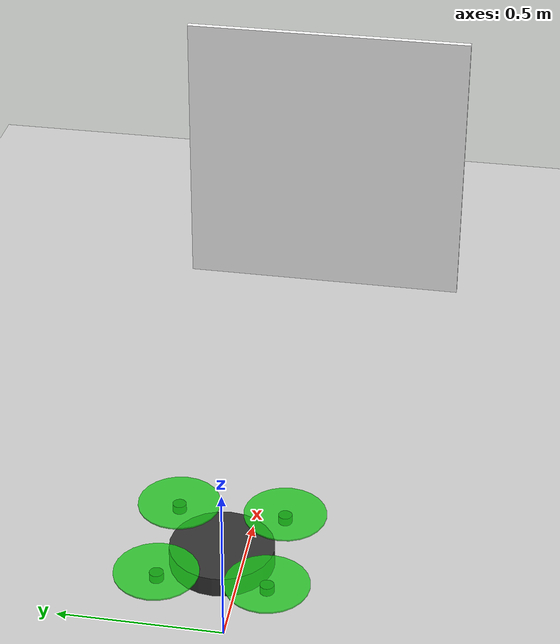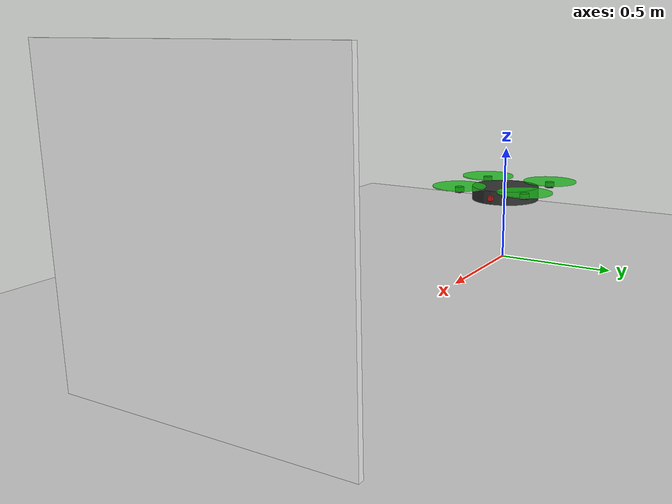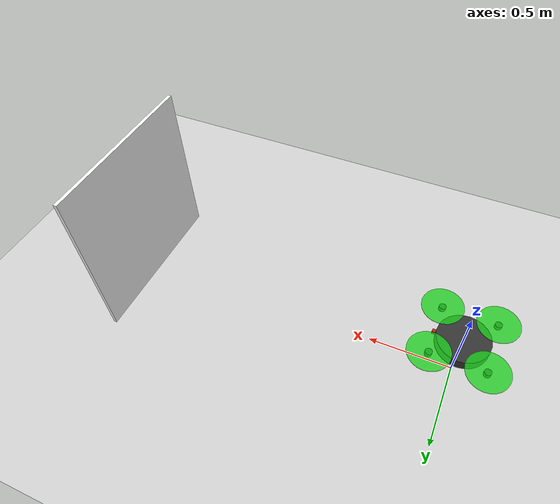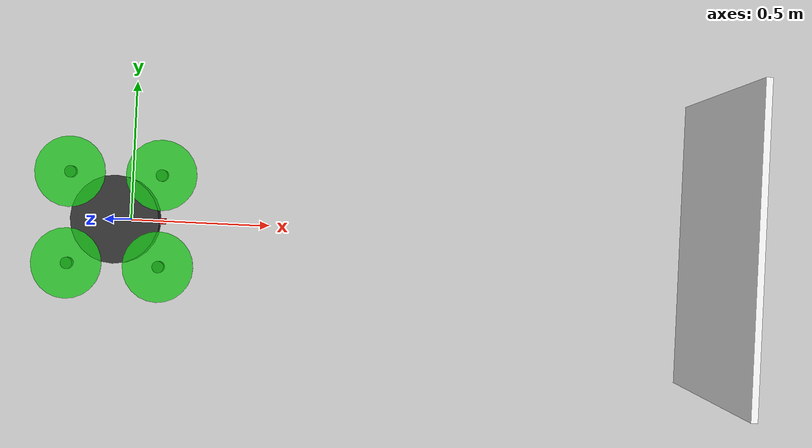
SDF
<?xml version="1.0"?>
<sdf version="1.9">
  <world name="drone_world">

    <physics name="default_physics" default="0" type="ode">
      <gravity>0 0 -9.8</gravity>
      <max_step_size>0.001</max_step_size>
      <real_time_factor>1</real_time_factor>
      <real_time_update_rate>1000</real_time_update_rate>
    </physics>

    <plugin filename="gz-sim-physics-system"
            name="gz::sim::systems::Physics"/>
    <plugin filename="gz-sim-user-commands-system"
            name="gz::sim::systems::UserCommands"/>
    <plugin filename="gz-sim-scene-broadcaster-system"
            name="gz::sim::systems::SceneBroadcaster"/>

    <!-- Sun -->
    <light name="sun" type="directional">
      <cast_shadows>true</cast_shadows>
      <pose>0 0 100 0 0 0</pose>
      <diffuse>0.8 0.8 0.8 1</diffuse>
      <specular>0.2 0.2 0.2 1</specular>
      <direction>-0.5 0.1 -0.9</direction>
    </light>

    <!-- Ground plane -->
    <model name="ground_plane">
      <static>true</static>
      <link name="link">
        <collision name="collision">
          <geometry><plane><normal>0 0 1</normal><size>100 100</size></plane></geometry>
        </collision>
        <visual name="visual">
          <geometry><plane><normal>0 0 1</normal><size>100 100</size></plane></geometry>
          <material>
            <ambient>0.8 0.8 0.8 1</ambient>
            <diffuse>0.8 0.8 0.8 1</diffuse>
          </material>
        </visual>
      </link>
    </model>

    <!-- ArUco wall (2m in front) -->
    <model name="aruco_wall">
      <static>true</static>
      <pose>2 0 0.5 0 0 0</pose>
      <link name="link">
        <collision name="collision">
          <geometry><box><size>0.02 1.0 1.0</size></box></geometry>
        </collision>
        <visual name="visual">
          <geometry><box><size>0.02 1.0 1.0</size></box></geometry>
          <material>
            <ambient>1 1 1 1</ambient>
            <diffuse>1 1 1 1</diffuse>
          </material>
        </visual>
      </link>
    </model>

    <!-- ── QUADROTOR DRONE ─────────────────────────────────────── -->
    <model name="quadrotor">
      <pose>0 0 0.3 0 0 0</pose>

      <!-- Velocity control plugin -->
      <plugin filename="gz-sim-velocity-control-system"
              name="gz::sim::systems::VelocityControl">
        <topic>/cmd_vel</topic>
      </plugin>

      <!-- Body -->
      <link name="base_link">
        <inertial>
          <mass>1.5</mass>
          <inertia>
            <ixx>0.0347</ixx><ixy>0</ixy><ixz>0</ixz>
            <iyy>0.0458</iyy><iyz>0</iyz>
            <izz>0.0977</izz>
          </inertia>
        </inertial>
        <visual name="body_visual">
          <geometry><cylinder><radius>0.15</radius><length>0.06</length></cylinder></geometry>
          <material><ambient>0.2 0.2 0.2 1</ambient><diffuse>0.2 0.2 0.2 1</diffuse></material>
        </visual>
        <collision name="body_col">
          <geometry><cylinder><radius>0.15</radius><length>0.06</length></cylinder></geometry>
        </collision>

        <!-- Front-Left motor -->
        <visual name="fl_motor">
          <pose>0.155 0.155 0.025 0 0 0</pose>
          <geometry><cylinder><radius>0.02</radius><length>0.025</length></cylinder></geometry>
          <material><ambient>0.1 0.1 0.1 1</ambient></material>
        </visual>
        <!-- Front-Right motor -->
        <visual name="fr_motor">
          <pose>0.155 -0.155 0.025 0 0 0</pose>
          <geometry><cylinder><radius>0.02</radius><length>0.025</length></cylinder></geometry>
          <material><ambient>0.1 0.1 0.1 1</ambient></material>
        </visual>
        <!-- Rear-Left motor -->
        <visual name="rl_motor">
          <pose>-0.155 0.155 0.025 0 0 0</pose>
          <geometry><cylinder><radius>0.02</radius><length>0.025</length></cylinder></geometry>
          <material><ambient>0.1 0.1 0.1 1</ambient></material>
        </visual>
        <!-- Rear-Right motor -->
        <visual name="rr_motor">
          <pose>-0.155 -0.155 0.025 0 0 0</pose>
          <geometry><cylinder><radius>0.02</radius><length>0.025</length></cylinder></geometry>
          <material><ambient>0.1 0.1 0.1 1</ambient></material>
        </visual>

        <!-- Props (flat discs) -->
        <visual name="fl_prop">
          <pose>0.155 0.155 0.04 0 0 0</pose>
          <geometry><cylinder><radius>0.12</radius><length>0.005</length></cylinder></geometry>
          <material><ambient>0.1 0.8 0.1 0.8</ambient><diffuse>0.1 0.8 0.1 0.8</diffuse></material>
        </visual>
        <visual name="fr_prop">
          <pose>0.155 -0.155 0.04 0 0 0</pose>
          <geometry><cylinder><radius>0.12</radius><length>0.005</length></cylinder></geometry>
          <material><ambient>0.1 0.8 0.1 0.8</ambient><diffuse>0.1 0.8 0.1 0.8</diffuse></material>
        </visual>
        <visual name="rl_prop">
          <pose>-0.155 0.155 0.04 0 0 0</pose>
          <geometry><cylinder><radius>0.12</radius><length>0.005</length></cylinder></geometry>
          <material><ambient>0.1 0.8 0.1 0.8</ambient><diffuse>0.1 0.8 0.1 0.8</diffuse></material>
        </visual>
        <visual name="rr_prop">
          <pose>-0.155 -0.155 0.04 0 0 0</pose>
          <geometry><cylinder><radius>0.12</radius><length>0.005</length></cylinder></geometry>
          <material><ambient>0.1 0.8 0.1 0.8</ambient><diffuse>0.1 0.8 0.1 0.8</diffuse></material>
        </visual>

        <!-- Front camera (red box) -->
        <visual name="camera_visual">
          <pose>0.16 0 0 0 0 0</pose>
          <geometry><box><size>0.02 0.02 0.02</size></box></geometry>
          <material><ambient>0.8 0.1 0.1 1</ambient><diffuse>0.8 0.1 0.1 1</diffuse></material>
        </visual>

        <!-- Camera sensor -->
        <sensor name="front_camera" type="camera">
          <pose>0.16 0 0 0 0 0</pose>
          <always_on>true</always_on>
          <update_rate>30</update_rate>
          <camera>
            <horizontal_fov>1.5708</horizontal_fov>
            <image><width>640</width><height>480</height><format>R8G8B8</format></image>
            <clip><near>0.05</near><far>50</far></clip>
          </camera>
          <topic>/camera/image</topic>
        </sensor>

      </link>
    </model>

  </world>
</sdf>
